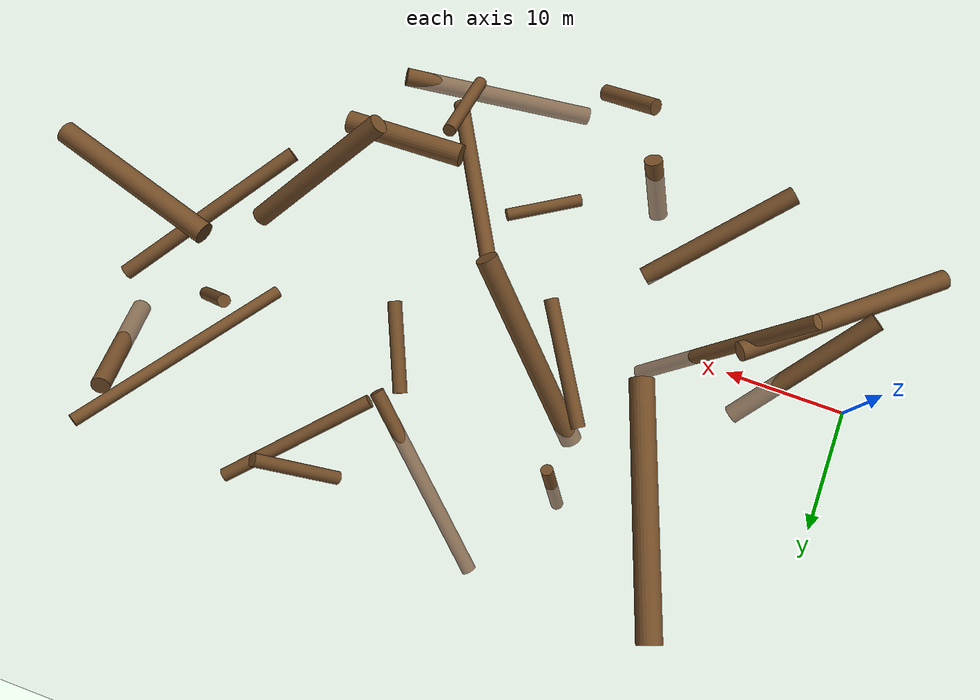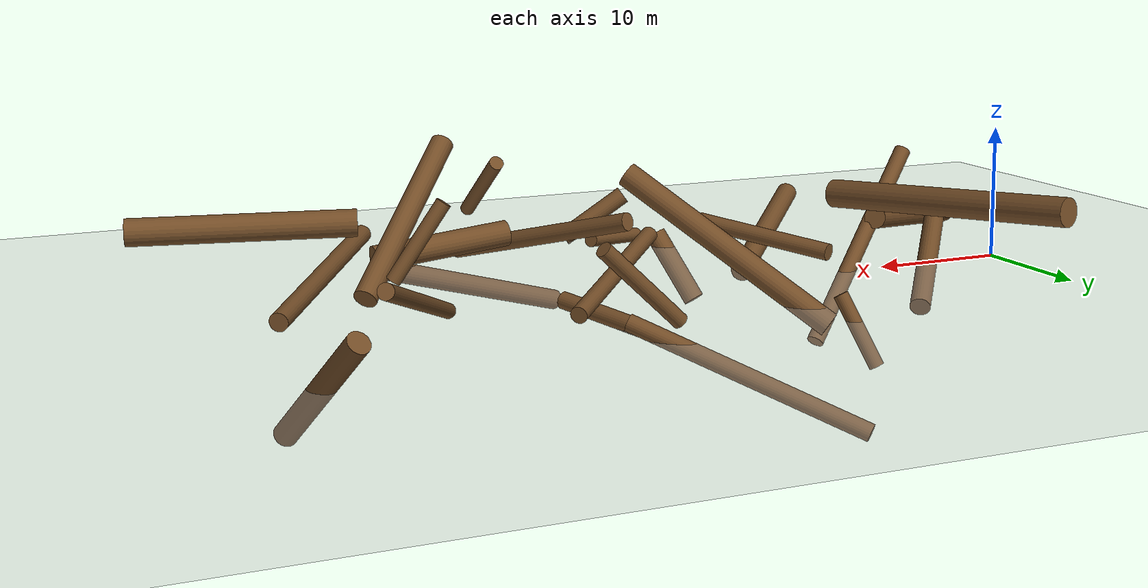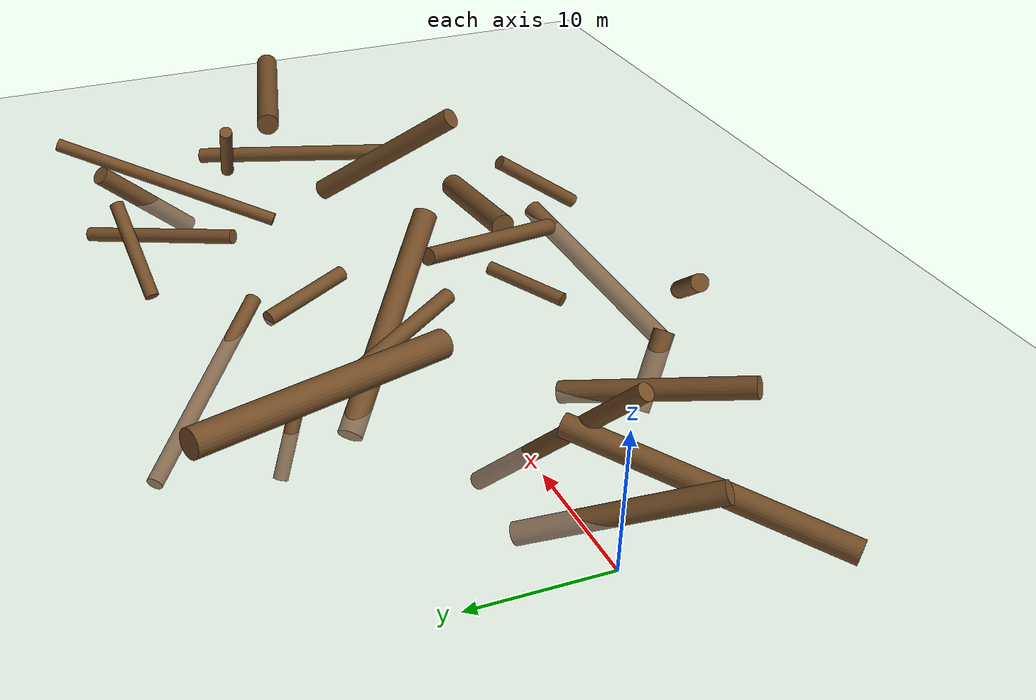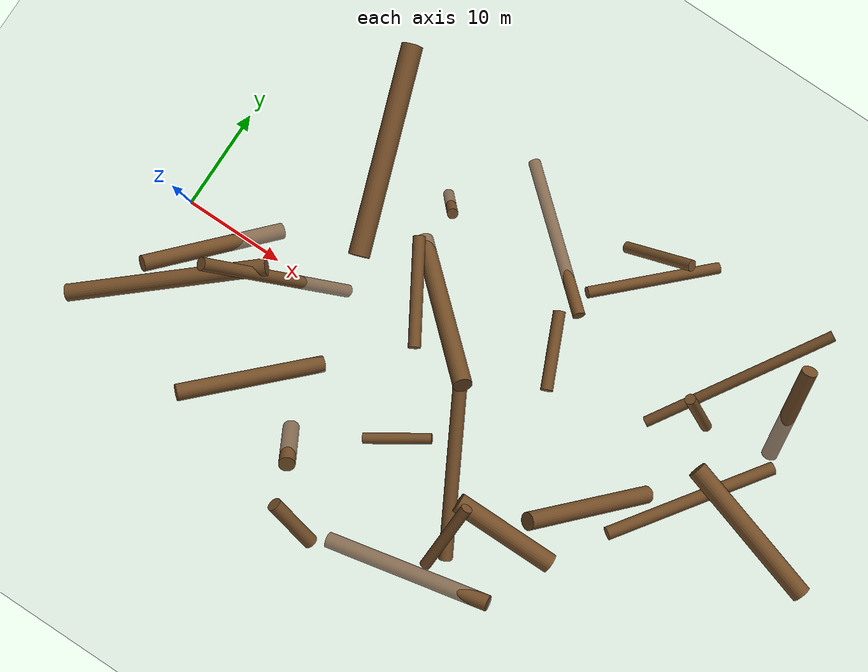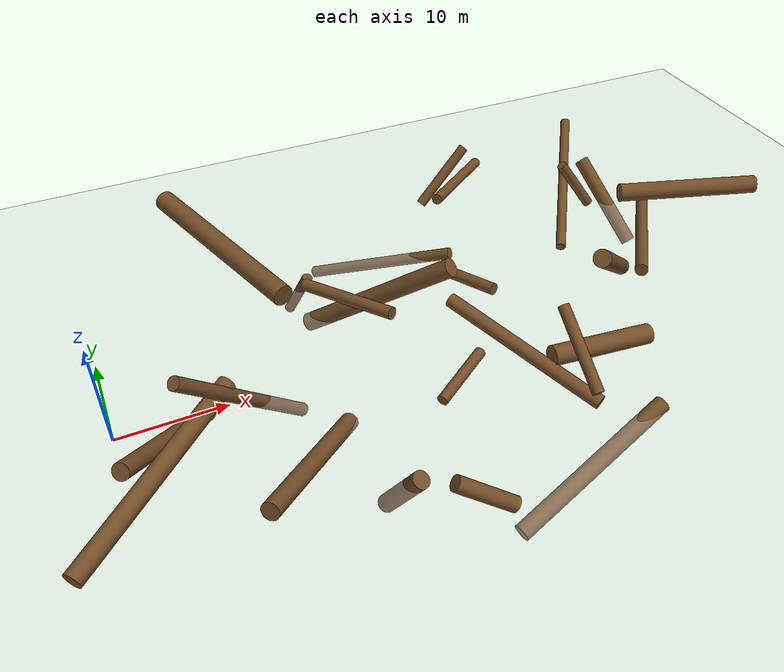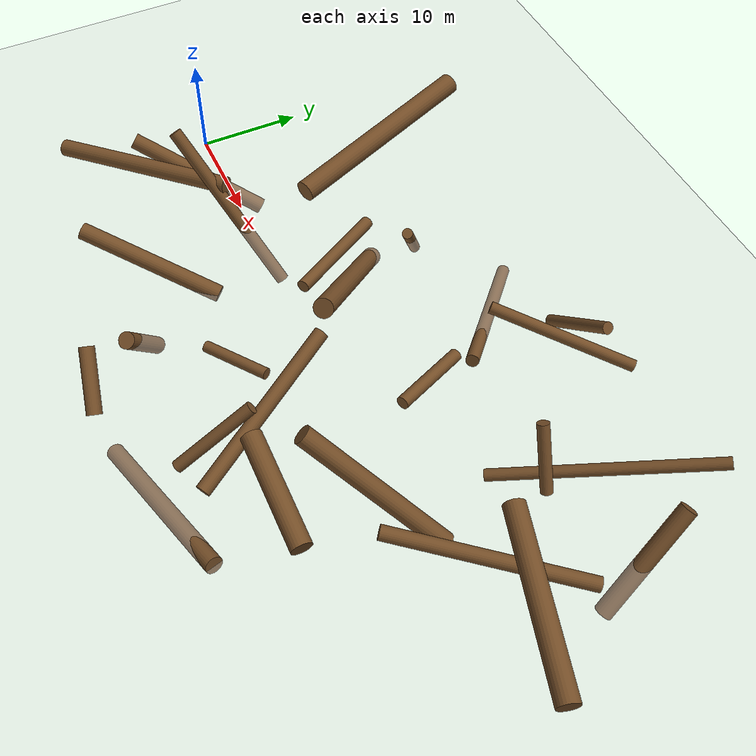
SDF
<sdf version='1.7'>
            <world name='default'>
                <light name='sun' type='directional'>
                <cast_shadows>1</cast_shadows>
                <pose>0 0 10 0 -0 0</pose>
                <diffuse>0.8 0.8 0.8 1</diffuse>
                <specular>0.2 0.2 0.2 1</specular>
                <attenuation>
                    <range>1000</range>
                    <constant>0.9</constant>
                    <linear>0.01</linear>
                    <quadratic>0.001</quadratic>
                </attenuation>
                <direction>-0.5 0.1 -0.9</direction>
                <spot>
                    <inner_angle>0</inner_angle>
                    <outer_angle>0</outer_angle>
                    <falloff>0</falloff>
                </spot>
                </light>
                <model name='ground_plane'>
                <static>1</static>
                <link name='link'>
                    <collision name='collision'>
                    <geometry>
                        <plane>
                        <normal>0 0 1</normal>
                        <size>100 100</size>
                        </plane>
                    </geometry>
                    <surface>
                        <contact>
                        <collide_bitmask>65535</collide_bitmask>
                        <ode/>
                        </contact>
                        <friction>
                        <ode>
                            <mu>100</mu>
                            <mu2>50</mu2>
                        </ode>
                        <torsional>
                            <ode/>
                        </torsional>
                        </friction>
                        <bounce/>
                    </surface>
                    <max_contacts>10</max_contacts>
                    </collision>
                    <visual name='visual'>
                    <cast_shadows>0</cast_shadows>
                    <geometry>
                        <plane>
                        <normal>0 0 1</normal>
                        <size>100 100</size>
                        </plane>
                    </geometry>
                    <material>
                        <script>
                        <uri>file://media/materials/scripts/gazebo.material</uri>
                        <name>Gazebo/Grey</name>
                        </script>
                    </material>
                    </visual>
                    <self_collide>0</self_collide>
                    <enable_wind>0</enable_wind>
                    <kinematic>0</kinematic>
                </link>
                </model>
                <gravity>0 0 -9.8</gravity>
                <magnetic_field>6e-06 2.3e-05 -4.2e-05</magnetic_field>
                <atmosphere type='adiabatic'/>
                <physics type='ode'>
                <max_step_size>0.001</max_step_size>
                <real_time_factor>1</real_time_factor>
                <real_time_update_rate>1000</real_time_update_rate>
                </physics>
                <scene>
                <ambient>0.4 0.4 0.4 1</ambient>
                <background>0.7 0.7 0.7 1</background>
                <shadows>1</shadows>
                </scene>
                <wind/>
                <spherical_coordinates>
                <surface_model>EARTH_WGS84</surface_model>
                <latitude_deg>0</latitude_deg>
                <longitude_deg>0</longitude_deg>
                <elevation>0</elevation>
                <heading_deg>0</heading_deg>
                </spherical_coordinates>
                <model name='cylinder_1'>
      <static>1</static>
      <link name='link'>
        <pose frame=''>0 0 0.1 0 -0 0</pose>
        <collision name='collision_trunk'>
          <pose frame=''>0 0 2 0 -0 0</pose>
          <geometry>
            <cylinder>
              <radius>0.9430902112990758</radius>
              <length>10.291909499819477</length>
            </cylinder>
          </geometry>
        </collision>
        <visual name='trunk'>
          <pose frame=''>0 0 2 0 -0 0</pose>
          <geometry>
            <cylinder>
              <radius>0.9430902112990758</radius>
              <length>10.291909499819477</length>
            </cylinder>
          </geometry>
          <material>
            <script>
              <uri>model://tree_simple/scripts</uri>
              <uri>model://tree_simple/materials/textures</uri>
              <name>TreeSimple/Trunk</name>
            </script>
          </material>
        </visual>
        <self_collide>0</self_collide>
        <kinematic>0</kinematic>
      </link>
      <pose frame=''>39.74317432215676 -9.343931206086364 2.9591398449743416 150.42631080975082 80.00073092195436 110.32574796755969</pose>
    </model>
    <model name='cylinder_2'>
      <static>1</static>
      <link name='link'>
        <pose frame=''>0 0 0.1 0 -0 0</pose>
        <collision name='collision_trunk'>
          <pose frame=''>0 0 2 0 -0 0</pose>
          <geometry>
            <cylinder>
              <radius>0.9960272845681307</radius>
          <length>19.550017790829138</length>
            </cylinder>
          </geometry>
        </collision>
        <visual name='trunk'>
          <pose frame=''>0 0 2 0 -0 0</pose>
          <geometry>
            <cylinder>
              <radius>0.9960272845681307</radius>
          <length>19.550017790829138</length>
            </cylinder>
          </geometry>
          <material>
            <script>
              <uri>model://tree_simple/scripts</uri>
              <uri>model://tree_simple/materials/textures</uri>
              <name>TreeSimple/Trunk</name>
            </script>
          </material>
        </visual>
        <self_collide>0</self_collide>
        <kinematic>0</kinematic>
      </link>
      <pose frame=''>12.891747594298206 15.377896649857384 7.564468696115554 10.882928939145353 174.90626229691182 72.69272584499959</pose>
    </model>
    <model name='cylinder_3'>
      <static>1</static>
      <link name='link'>
        <pose frame=''>0 0 0.1 0 -0 0</pose>
        <collision name='collision_trunk'>
          <pose frame=''>0 0 2 0 -0 0</pose>
          <geometry>
            <cylinder>
              <radius>0.5053026365908622</radius>
          <length>5.872454124386706</length>
            </cylinder>
          </geometry>
        </collision>
        <visual name='trunk'>
          <pose frame=''>0 0 2 0 -0 0</pose>
          <geometry>
            <cylinder>
              <radius>0.5053026365908622</radius>
          <length>5.872454124386706</length>
            </cylinder>
          </geometry>
          <material>
            <script>
              <uri>model://tree_simple/scripts</uri>
              <uri>model://tree_simple/materials/textures</uri>
              <name>TreeSimple/Trunk</name>
            </script>
          </material>
        </visual>
        <self_collide>0</self_collide>
        <kinematic>0</kinematic>
      </link>
      <pose frame=''>51.18185914667769 9.102436668496942 5.381573043870958 100.17624834679962 25.61661776371553 134.18266041176508</pose>
    </model>
    <model name='cylinder_4'>
      <static>1</static>
      <link name='link'>
        <pose frame=''>0 0 0.1 0 -0 0</pose>
        <collision name='collision_trunk'>
          <pose frame=''>0 0 2 0 -0 0</pose>
          <geometry>
            <cylinder>
              <radius>0.8950504909123032</radius>
          <length>14.396352155439068</length>
            </cylinder>
          </geometry>
        </collision>
        <visual name='trunk'>
          <pose frame=''>0 0 2 0 -0 0</pose>
          <geometry>
            <cylinder>
             <radius>0.8950504909123032</radius>
          <length>14.396352155439068</length>
            </cylinder>
          </geometry>
          <material>
            <script>
              <uri>model://tree_simple/scripts</uri>
              <uri>model://tree_simple/materials/textures</uri>
              <name>TreeSimple/Trunk</name>
            </script>
          </material>
        </visual>
        <self_collide>0</self_collide>
        <kinematic>0</kinematic>
      </link>
      <pose frame=''>57.48846137358321 3.615839646745517 7.733618682945663 9.993674168272626 86.41111353532555 17.992929639827523</pose>
    </model>
    <model name='cylinder_5'>
      <static>1</static>
      <link name='link'>
        <pose frame=''>0 0 0.1 0 -0 0</pose>
        <collision name='collision_trunk'>
          <pose frame=''>0 0 2 0 -0 0</pose>
          <geometry>
            <cylinder>
              <radius>0.5266417238961667</radius>
          <length>12.812958095754512</length>
            </cylinder>
          </geometry>
        </collision>
        <visual name='trunk'>
          <pose frame=''>0 0 2 0 -0 0</pose>
          <geometry>
            <cylinder>
              <radius>0.5266417238961667</radius>
          <length>12.812958095754512</length>
            </cylinder>
          </geometry>
          <material>
            <script>
              <uri>model://tree_simple/scripts</uri>
              <uri>model://tree_simple/materials/textures</uri>
              <name>TreeSimple/Trunk</name>
            </script>
          </material>
        </visual>
        <self_collide>0</self_collide>
        <kinematic>0</kinematic>
      </link>
      <pose frame=''>41.662344045142696 18.79582942872156 5.377291065158296 143.2165058803612 87.17597317354682 46.14527534255996</pose>
    </model>
    <model name='cylinder_6'>
      <static>1</static>
      <link name='link'>
        <pose frame=''>0 0 0.1 0 -0 0</pose>
        <collision name='collision_trunk'>
          <pose frame=''>0 0 2 0 -0 0</pose>
          <geometry>
            <cylinder>
              <radius>0.662500897662142</radius>
          <length>16.372119994490557</length>
            </cylinder>
          </geometry>
        </collision>
        <visual name='trunk'>
          <pose frame=''>0 0 2 0 -0 0</pose>
          <geometry>
            <cylinder>
              <radius>0.662500897662142</radius>
          <length>16.372119994490557</length>
            </cylinder>
          </geometry>
          <material>
            <script>
              <uri>model://tree_simple/scripts</uri>
              <uri>model://tree_simple/materials/textures</uri>
              <name>TreeSimple/Trunk</name>
            </script>
          </material>
        </visual>
        <self_collide>0</self_collide>
        <kinematic>0</kinematic>
      </link>
      <pose frame=''>35.84622223518586 -9.2679620996413 2.7243804768280535 135.59487182447734 17.006522207308713 64.38762573763637</pose>
    </model>
    <model name='cylinder_7'>
      <static>1</static>
      <link name='link'>
        <pose frame=''>0 0 0.1 0 -0 0</pose>
        <collision name='collision_trunk'>
          <pose frame=''>0 0 2 0 -0 0</pose>
          <geometry>
            <cylinder>
              <radius>0.599876175435007</radius>
          <length>7.626815907137944</length>
            </cylinder>
          </geometry>
        </collision>
        <visual name='trunk'>
          <pose frame=''>0 0 2 0 -0 0</pose>
          <geometry>
            <cylinder>
              <radius>0.599876175435007</radius>
          <length>7.626815907137944</length>
            </cylinder>
          </geometry>
          <material>
            <script>
              <uri>model://tree_simple/scripts</uri>
              <uri>model://tree_simple/materials/textures</uri>
              <name>TreeSimple/Trunk</name>
            </script>
          </material>
        </visual>
        <self_collide>0</self_collide>
        <kinematic>0</kinematic>
      </link>
      <pose frame=''>37.18265543968126 5.4084822718245675 0.8330915954182387 114.83218326826588 113.80278395166089 97.91278013723961</pose>
    </model>
    <model name='cylinder_8'>
      <static>1</static>
      <link name='link'>
        <pose frame=''>0 0 0.1 0 -0 0</pose>
        <collision name='collision_trunk'>
          <pose frame=''>0 0 2 0 -0 0</pose>
          <geometry>
            <cylinder>
              <radius>0.5098711713630153</radius>
          <length>6.427516957390215</length>
            </cylinder>
          </geometry>
        </collision>
        <visual name='trunk'>
          <pose frame=''>0 0 2 0 -0 0</pose>
          <geometry>
            <cylinder>
              <radius>0.5098711713630153</radius>
          <length>6.427516957390215</length>
            </cylinder>
          </geometry>
          <material>
            <script>
              <uri>model://tree_simple/scripts</uri>
              <uri>model://tree_simple/materials/textures</uri>
              <name>TreeSimple/Trunk</name>
            </script>
          </material>
        </visual>
        <self_collide>0</self_collide>
        <kinematic>0</kinematic>
      </link>
      <pose frame=''>30.531535394554844 -6.459259315090131 2.791815733064273 31.789885152882455 17.166923363849808 157.28867148193498</pose>
    </model>
    <model name='cylinder_9'>
      <static>1</static>
      <link name='link'>
        <pose frame=''>0 0 0.1 0 -0 0</pose>
        <collision name='collision_trunk'>
          <pose frame=''>0 0 2 0 -0 0</pose>
          <geometry>
            <cylinder>
              <radius>0.8007592708204493</radius>
          <length>14.11710574113852</length>
            </cylinder>
          </geometry>
        </collision>
        <visual name='trunk'>
          <pose frame=''>0 0 2 0 -0 0</pose>
          <geometry>
            <cylinder>
              <radius>0.8007592708204493</radius>
          <length>14.11710574113852</length>
            </cylinder>
          </geometry>
          <material>
            <script>
              <uri>model://tree_simple/scripts</uri>
              <uri>model://tree_simple/materials/textures</uri>
              <name>TreeSimple/Trunk</name>
            </script>
          </material>
        </visual>
        <self_collide>0</self_collide>
        <kinematic>0</kinematic>
      </link>
      <pose frame=''>12.821373408205083 -12.021621520559137 1.931395490347036 177.21920871804608 97.54545314027115 77.81387309897292</pose>
    </model>
    <model name='cylinder_10'>
      <static>1</static>
      <link name='link'>
        <pose frame=''>0 0 0.1 0 -0 0</pose>
        <collision name='collision_trunk'>
          <pose frame=''>0 0 2 0 -0 0</pose>
          <geometry>
            <cylinder>
              <radius>0.88879524422902</radius>
          <length>17.70746538794261</length>
            </cylinder>
          </geometry>
        </collision>
        <visual name='trunk'>
          <pose frame=''>0 0 2 0 -0 0</pose>
          <geometry>
            <cylinder>
              <radius>0.88879524422902</radius>
          <length>17.70746538794261</length>
            </cylinder>
          </geometry>
          <material>
            <script>
              <uri>model://tree_simple/scripts</uri>
              <uri>model://tree_simple/materials/textures</uri>
              <name>TreeSimple/Trunk</name>
            </script>
          </material>
        </visual>
        <self_collide>0</self_collide>
        <kinematic>0</kinematic>
      </link>
      <pose frame=''>26.97601685536932 3.402967135269243 4.823490329469223 173.5193566341113 82.40129226231242 150.999021302333</pose>
    </model>
    <model name='cylinder_11'>
      <static>1</static>
      <link name='link'>
        <pose frame=''>0 0 0.1 0 -0 0</pose>
        <collision name='collision_trunk'>
          <pose frame=''>0 0 2 0 -0 0</pose>
          <geometry>
            <cylinder>
              <radius>0.6215498459218344</radius>
          <length>16.78029317903673</length>
            </cylinder>
          </geometry>
        </collision>
        <visual name='trunk'>
          <pose frame=''>0 0 2 0 -0 0</pose>
          <geometry>
            <cylinder>
              <radius>0.6215498459218344</radius>
          <length>16.78029317903673</length>
            </cylinder>
          </geometry>
          <material>
            <script>
              <uri>model://tree_simple/scripts</uri>
              <uri>model://tree_simple/materials/textures</uri>
              <name>TreeSimple/Trunk</name>
            </script>
          </material>
        </visual>
        <self_collide>0</self_collide>
        <kinematic>0</kinematic>
      </link>
      <pose frame=''>53.036082842944516 0.9254011305937127 4.337668001203559 63.99618248083277 161.4411733507774 72.01835913561703</pose>
    </model>
        <model name='cylinder_12'>
      <static>1</static>
      <link name='link'>
        <pose frame=''>0 0 0.1 0 -0 0</pose>
        <collision name='collision_trunk'>
          <pose frame=''>0 0 2 0 -0 0</pose>
          <geometry>
            <cylinder>
              <radius>0.776959101589985</radius>
          <length>14.25064070858908</length>
            </cylinder>
          </geometry>
        </collision>
        <visual name='trunk'>
          <pose frame=''>0 0 2 0 -0 0</pose>
          <geometry>
            <cylinder>
              <radius>0.776959101589985</radius>
          <length>14.25064070858908</length>
            </cylinder>
          </geometry>
          <material>
            <script>
              <uri>model://tree_simple/scripts</uri>
              <uri>model://tree_simple/materials/textures</uri>
              <name>TreeSimple/Trunk</name>
            </script>
          </material>
        </visual>
        <self_collide>0</self_collide>
        <kinematic>0</kinematic>
      </link>
      <pose frame=''>3.049576247468313 -3.7807751428286274 1.3708619238397537 51.36573376245255 59.43447873365801 77.7363261524686</pose>
    </model>
    <model name='cylinder_13'>
      <static>1</static>
      <link name='link'>
        <pose frame=''>0 0 0.1 0 -0 0</pose>
        <collision name='collision_trunk'>
          <pose frame=''>0 0 2 0 -0 0</pose>
          <geometry>
            <cylinder>
              <radius>0.5139210862587837</radius>
          <length>18.723971424676712</length>
            </cylinder>
          </geometry>
        </collision>
        <visual name='trunk'>
          <pose frame=''>0 0 2 0 -0 0</pose>
          <geometry>
            <cylinder>
              <radius>0.5139210862587837</radius>
          <length>18.723971424676712</length>
            </cylinder>
          </geometry>
          <material>
            <script>
              <uri>model://tree_simple/scripts</uri>
              <uri>model://tree_simple/materials/textures</uri>
              <name>TreeSimple/Trunk</name>
            </script>
          </material>
        </visual>
        <self_collide>0</self_collide>
        <kinematic>0</kinematic>
      </link>
      <pose frame=''>52.76982710644033 15.92439791279471 5.064171336374878 162.87948665082556 108.71182848224572 79.06502269370944</pose>
    </model>
    <model name='cylinder_14'>
      <static>1</static>
      <link name='link'>
        <pose frame=''>0 0 0.1 0 -0 0</pose>
        <collision name='collision_trunk'>
          <pose frame=''>0 0 2 0 -0 0</pose>
          <geometry>
            <cylinder>
              <radius>0.6024407939733367</radius>
          <length>17.156769080676856</length>
            </cylinder>
          </geometry>
        </collision>
        <visual name='trunk'>
          <pose frame=''>0 0 2 0 -0 0</pose>
          <geometry>
            <cylinder>
              <radius>0.6024407939733367</radius>
          <length>17.156769080676856</length>
            </cylinder>
          </geometry>
          <material>
            <script>
              <uri>model://tree_simple/scripts</uri>
              <uri>model://tree_simple/materials/textures</uri>
              <name>TreeSimple/Trunk</name>
            </script>
          </material>
        </visual>
        <self_collide>0</self_collide>
        <kinematic>0</kinematic>
      </link>
      <pose frame=''>29.17010325247367 18.157838929515094 -2.764377008585395 80.47071335237386 106.77441666504535 73.0694863963725</pose>
    </model>
    <model name='cylinder_15'>
      <static>1</static>
      <link name='link'>
        <pose frame=''>0 0 0.1 0 -0 0</pose>
        <collision name='collision_trunk'>
          <pose frame=''>0 0 2 0 -0 0</pose>
          <geometry>
            <cylinder>
              <radius>0.7765780240212764</radius>
          <length>10.885968748075536</length>
            </cylinder>
          </geometry>
        </collision>
        <visual name='trunk'>
          <pose frame=''>0 0 2 0 -0 0</pose>
          <geometry>
            <cylinder>
              <radius>0.7765780240212764</radius>
          <length>10.885968748075536</length>
            </cylinder>
          </geometry>
          <material>
            <script>
              <uri>model://tree_simple/scripts</uri>
              <uri>model://tree_simple/materials/textures</uri>
              <name>TreeSimple/Trunk</name>
            </script>
          </material>
        </visual>
        <self_collide>0</self_collide>
        <kinematic>0</kinematic>
      </link>
      <pose frame=''>58.632019297631516 13.308202151326384 -1.5179020175935602 28.78408109816141 134.39255440279078 87.41395317416732</pose>
    </model>
    <model name='cylinder_16'>
  <static>1</static>
  <link name='link'>
    <pose frame=''>0 0 0.1 0 -0 0</pose>
    <collision name='collision_trunk'>
      <pose frame=''>0 0 2 0 -0 0</pose>
      <geometry>
        <cylinder>
          <radius>0.52707103</radius>
          <length>7.6868314296</length>
        </cylinder>
      </geometry>
    </collision>
    <visual name='trunk'>
      <pose frame=''>0 0 2 0 -0 0</pose>
      <geometry>
        <cylinder>
          <radius>0.52707103</radius>
          <length>7.6868314296</length>
        </cylinder>
      </geometry>
      <material>
        <script>
          <uri>model://tree_simple/scripts</uri>
          <uri>model://tree_simple/materials/textures</uri>
          <name>TreeSimple/Trunk</name>
        </script>
      </material>
    </visual>
    <self_collide>0</self_collide>
    <kinematic>0</kinematic>
  </link>
  <pose frame=''>37.8957434455 19.2323665717 3.9305503001 333.8092408242 326.4553279772 165.3624398058</pose>
</model>

<model name='cylinder_17'>
  <static>1</static>
  <link name='link'>
    <pose frame=''>0 0 0.1 0 -0 0</pose>
    <collision name='collision_trunk'>
      <pose frame=''>0 0 2 0 -0 0</pose>
      <geometry>
        <cylinder>
          <radius>0.8040918794</radius>
          <length>6.0643432282</length>
        </cylinder>
      </geometry>
    </collision>
    <visual name='trunk'>
      <pose frame=''>0 0 2 0 -0 0</pose>
      <geometry>
        <cylinder>
          <radius>0.8040918794</radius>
          <length>6.0643432282</length>
        </cylinder>
      </geometry>
      <material>
        <script>
          <uri>model://tree_simple/scripts</uri>
          <uri>model://tree_simple/materials/textures</uri>
          <name>TreeSimple/Trunk</name>
        </script>
      </material>
    </visual>
    <self_collide>0</self_collide>
    <kinematic>0</kinematic>
  </link>
  <pose frame=''>21.1927667546 -14.969596828 0.063849788 352.4633137644 310.9226397439 217.2599327851</pose>
</model>

<model name='cylinder_18'>
  <static>1</static>
  <link name='link'>
    <pose frame=''>0 0 0.1 0 -0 0</pose>
    <collision name='collision_trunk'>
      <pose frame=''>0 0 2 0 -0 0</pose>
      <geometry>
        <cylinder>
          <radius>0.8280332034</radius>
          <length>19.3871107417</length>
        </cylinder>
      </geometry>
    </collision>
    <visual name='trunk'>
      <pose frame=''>0 0 2 0 -0 0</pose>
      <geometry>
        <cylinder>
          <radius>0.8280332034</radius>
          <length>19.3871107417</length>
        </cylinder>
      </geometry>
      <material>
        <script>
          <uri>model://tree_simple/scripts</uri>
          <uri>model://tree_simple/materials/textures</uri>
          <name>TreeSimple/Trunk</name>
        </script>
      </material>
    </visual>
    <self_collide>0</self_collide>
    <kinematic>0</kinematic>
  </link>
  <pose frame=''>1.0487860309 -8.7111737724 1.966052544 221.3408103995 307.9488863529 316.4207705041</pose>
</model>

<model name='cylinder_19'>
  <static>1</static>
  <link name='link'>
    <pose frame=''>0 0 0.1 0 -0 0</pose>
    <collision name='collision_trunk'>
      <pose frame=''>0 0 2 0 -0 0</pose>
      <geometry>
        <cylinder>
          <radius>0.5328125432</radius>
          <length>7.9226640827</length>
        </cylinder>
      </geometry>
    </collision>
    <visual name='trunk'>
      <pose frame=''>0 0 2 0 -0 0</pose>
      <geometry>
        <cylinder>
          <radius>0.5328125432</radius>
          <length>7.9226640827</length>
        </cylinder>
      </geometry>
      <material>
        <script>
          <uri>model://tree_simple/scripts</uri>
          <uri>model://tree_simple/materials/textures</uri>
          <name>TreeSimple/Trunk</name>
        </script>
      </material>
    </visual>
    <self_collide>0</self_collide>
    <kinematic>0</kinematic>
  </link>
  <pose frame=''>37.4468724892 -10.7189599071 7.4953147988 289.8469078125 286.4815558416 50.7286571623</pose>
</model>

<model name='cylinder_20'>
  <static>1</static>
  <link name='link'>
    <pose frame=''>0 0 0.1 0 -0 0</pose>
    <collision name='collision_trunk'>
      <pose frame=''>0 0 2 0 -0 0</pose>
      <geometry>
        <cylinder>
          <radius>0.6979370318</radius>
          <length>5.850832998</length>
        </cylinder>
      </geometry>
    </collision>
    <visual name='trunk'>
      <pose frame=''>0 0 2 0 -0 0</pose>
      <geometry>
        <cylinder>
          <radius>0.6979370318</radius>
          <length>5.850832998</length>
        </cylinder>
      </geometry>
      <material>
        <script>
          <uri>model://tree_simple/scripts</uri>
          <uri>model://tree_simple/materials/textures</uri>
          <name>TreeSimple/Trunk</name>
        </script>
      </material>
    </visual>
    <self_collide>0</self_collide>
    <kinematic>0</kinematic>
  </link>
  <pose frame=''>23.430627303 -19.0678943613 3.0568879982 307.7892520532 305.6959063257 78.3643475603</pose>
</model>

<model name='cylinder_21'>
  <static>1</static>
  <link name='link'>
    <pose frame=''>0 0 0.1 0 -0 0</pose>
    <collision name='collision_trunk'>
      <pose frame=''>0 0 2 0 -0 0</pose>
      <geometry>
        <cylinder>
          <radius>0.6233009234</radius>
          <length>17.7765765083</length>
        </cylinder>
      </geometry>
    </collision>
    <visual name='trunk'>
      <pose frame=''>0 0 2 0 -0 0</pose>
      <geometry>
        <cylinder>
          <radius>0.6233009234</radius>
          <length>17.7765765083</length>
        </cylinder>
      </geometry>
      <material>
        <script>
          <uri>model://tree_simple/scripts</uri>
          <uri>model://tree_simple/materials/textures</uri>
          <name>TreeSimple/Trunk</name>
        </script>
      </material>
    </visual>
    <self_collide>0</self_collide>
    <kinematic>0</kinematic>
  </link>
  <pose frame=''>9.8162937035 -2.0930899948 3.1719633192 37.202128643 10.0420413959 305.9738273239</pose>
</model>

<model name='cylinder_22'>
  <static>1</static>
  <link name='link'>
    <pose frame=''>0 0 0.1 0 -0 0</pose>
    <collision name='collision_trunk'>
      <pose frame=''>0 0 2 0 -0 0</pose>
      <geometry>
        <cylinder>
          <radius>0.5905643855</radius>
          <length>10.4307591844</length>
        </cylinder>
      </geometry>
    </collision>
    <visual name='trunk'>
      <pose frame=''>0 0 2 0 -0 0</pose>
      <geometry>
        <cylinder>
          <radius>0.5905643855</radius>
          <length>10.4307591844</length>
        </cylinder>
      </geometry>
      <material>
        <script>
          <uri>model://tree_simple/scripts</uri>
          <uri>model://tree_simple/materials/textures</uri>
          <name>TreeSimple/Trunk</name>
        </script>
      </material>
    </visual>
    <self_collide>0</self_collide>
    <kinematic>0</kinematic>
  </link>
  <pose frame=''>23.9180075698 2.79571687 4.5427630449 30.2938708424 290.8533328942 258.5956349654</pose>
</model>

<model name='cylinder_23'>
  <static>1</static>
  <link name='link'>
    <pose frame=''>0 0 0.1 0 -0 0</pose>
    <collision name='collision_trunk'>
      <pose frame=''>0 0 2 0 -0 0</pose>
      <geometry>
        <cylinder>
          <radius>0.7774923571</radius>
          <length>17.0272392987</length>
        </cylinder>
      </geometry>
    </collision>
    <visual name='trunk'>
      <pose frame=''>0 0 2 0 -0 0</pose>
      <geometry>
        <cylinder>
          <radius>0.7774923571</radius>
          <length>17.0272392987</length>
        </cylinder>
      </geometry>
      <material>
        <script>
          <uri>model://tree_simple/scripts</uri>
          <uri>model://tree_simple/materials/textures</uri>
          <name>TreeSimple/Trunk</name>
        </script>
      </material>
    </visual>
    <self_collide>0</self_collide>
    <kinematic>0</kinematic>
  </link>
  <pose frame=''>38.4203040962 -17.2135957301 -1.7717143187 130.031493164 200.4632629614 177.9397801176</pose>
</model>

<model name='cylinder_24'>
  <static>1</static>
  <link name='link'>
    <pose frame=''>0 0 0.1 0 -0 0</pose>
    <collision name='collision_trunk'>
      <pose frame=''>0 0 2 0 -0 0</pose>
      <geometry>
        <cylinder>
          <radius>0.8257460701</radius>
          <length>14.6629769032</length>
        </cylinder>
      </geometry>
    </collision>
    <visual name='trunk'>
      <pose frame=''>0 0 2 0 -0 0</pose>
      <geometry>
        <cylinder>
          <radius>0.8257460701</radius>
          <length>14.6629769032</length>
        </cylinder>
      </geometry>
      <material>
        <script>
          <uri>model://tree_simple/scripts</uri>
          <uri>model://tree_simple/materials/textures</uri>
          <name>TreeSimple/Trunk</name>
        </script>
      </material>
    </visual>
    <self_collide>0</self_collide>
    <kinematic>0</kinematic>
  </link>
  <pose frame=''>47.8820138491 -1.9281344026 4.9440542438 55.9952309597 43.1951790187 233.9515290932</pose>
</model>

<model name='cylinder_25'>
  <static>1</static>
  <link name='link'>
    <pose frame=''>0 0 0.1 0 -0 0</pose>
    <collision name='collision_trunk'>
      <pose frame=''>0 0 2 0 -0 0</pose>
      <geometry>
        <cylinder>
          <radius>0.5164718856</radius>
          <length>5.4147404014</length>
        </cylinder>
      </geometry>
    </collision>
    <visual name='trunk'>
      <pose frame=''>0 0 2 0 -0 0</pose>
      <geometry>
        <cylinder>
          <radius>0.5164718856</radius>
          <length>5.4147404014</length>
        </cylinder>
      </geometry>
      <material>
        <script>
          <uri>model://tree_simple/scripts</uri>
          <uri>model://tree_simple/materials/textures</uri>
          <name>TreeSimple/Trunk</name>
        </script>
      </material>
    </visual>
    <self_collide>0</self_collide>
    <kinematic>0</kinematic>
  </link>
  <pose frame=''>21.1538611819 12.9491405308 1.1112960474 106.9398682608 223.5445748811 344.4725079492</pose>
</model>
            </world>
            </sdf>
